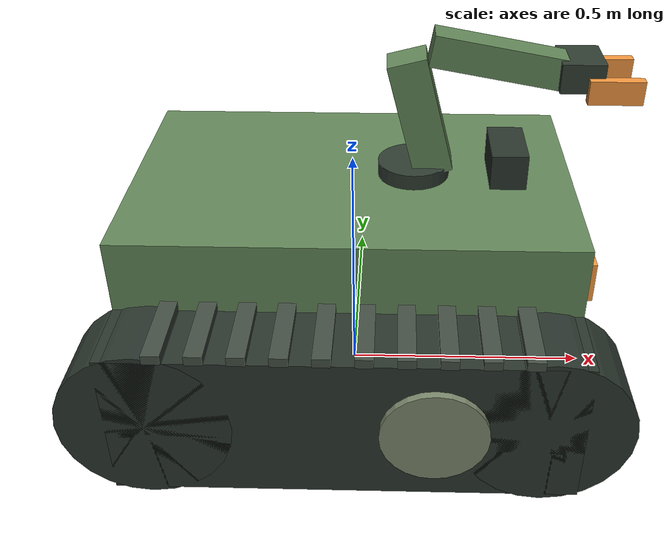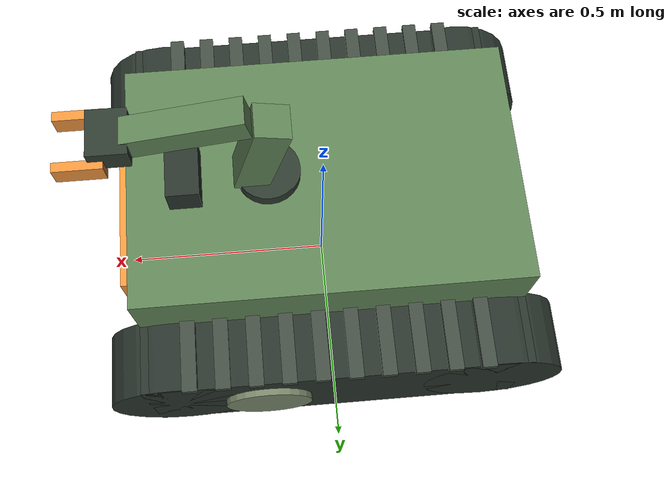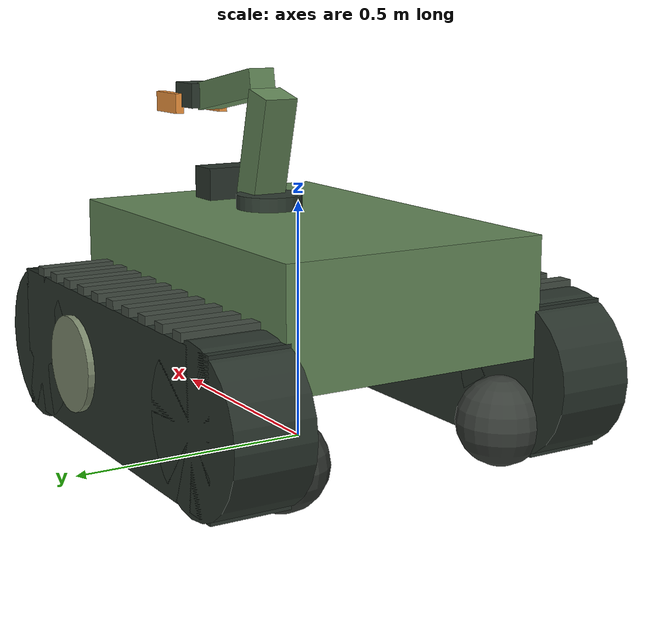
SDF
<?xml version='1.0' encoding='utf-8'?>
<sdf version="1.10">
  <model name="robot">
    <static>false</static>
    <link name="base_link">
      <inertial>
        <mass>52.6</mass>
        <pose>0 0 0.34 0 0 0</pose>
        <inertia>
          <ixx>1.6270933333333335</ixx>
          <iyy>3.494393333333333</iyy>
          <izz>4.616526666666666</izz>
        </inertia>
      </inertial>
      <collision name="body_collision">
        <pose>0 0 0.35 0 0 0</pose>
        <geometry>
          <box>
            <size>0.78 0.48 0.2</size>
          </box>
        </geometry>
        <surface>
          <friction>
            <ode>
              <mu>0.6</mu>
              <mu2>0.6</mu2>
            </ode>
          </friction>
        </surface>
      </collision>
      <visual name="body">
        <pose>0 0 0.35 0 0 0</pose>
        <geometry>
          <box>
            <size>0.86 0.56 0.24</size>
          </box>
        </geometry>
        <material>
          <diffuse>0.38 0.52 0.34 1</diffuse>
        </material>
      </visual>
      <visual name="front_marker">
        <pose>0.44 0 0.35 0 0 0</pose>
        <geometry>
          <box>
            <size>0.04 0.4032 0.08</size>
          </box>
        </geometry>
        <material>
          <diffuse>0.96 0.6 0.24 1</diffuse>
        </material>
      </visual>
      <visual name="camera">
        <pose>0.301 0 0.506 0 0 0</pose>
        <geometry>
          <box>
            <size>0.07 0.13 0.07</size>
          </box>
        </geometry>
        <material>
          <diffuse>0.16 0.2 0.17 1</diffuse>
        </material>
      </visual>
      <visual name="left_track_envelope">
        <pose>0 0.35 0.18 0 0 0</pose>
        <geometry>
          <box>
            <size>0.86 0.16 0.3</size>
          </box>
        </geometry>
        <material>
          <diffuse>0.16 0.2 0.17 1</diffuse>
        </material>
      </visual>
      <visual name="left_rear_idler_visual">
        <pose>-0.36 0.35 0.18 1.5707963267948966 0 0</pose>
        <geometry>
          <cylinder>
            <radius>0.16</radius>
            <length>0.16</length>
          </cylinder>
        </geometry>
        <material>
          <diffuse>0.16 0.2 0.17 1</diffuse>
        </material>
      </visual>
      <visual name="left_front_idler_visual">
        <pose>0.36 0.35 0.18 1.5707963267948966 0 0</pose>
        <geometry>
          <cylinder>
            <radius>0.16</radius>
            <length>0.16</length>
          </cylinder>
        </geometry>
        <material>
          <diffuse>0.16 0.2 0.17 1</diffuse>
        </material>
      </visual>
      <visual name="left_tread_0">
        <pose>-0.324 0.35 0.34199999999999997 0 0 0</pose>
        <geometry>
          <box>
            <size>0.032 0.1728 0.018</size>
          </box>
        </geometry>
        <material>
          <diffuse>0.26 0.3 0.26 1</diffuse>
        </material>
      </visual>
      <visual name="left_tread_1">
        <pose>-0.252 0.35 0.34199999999999997 0 0 0</pose>
        <geometry>
          <box>
            <size>0.032 0.1728 0.018</size>
          </box>
        </geometry>
        <material>
          <diffuse>0.26 0.3 0.26 1</diffuse>
        </material>
      </visual>
      <visual name="left_tread_2">
        <pose>-0.18 0.35 0.34199999999999997 0 0 0</pose>
        <geometry>
          <box>
            <size>0.032 0.1728 0.018</size>
          </box>
        </geometry>
        <material>
          <diffuse>0.26 0.3 0.26 1</diffuse>
        </material>
      </visual>
      <visual name="left_tread_3">
        <pose>-0.10799999999999998 0.35 0.34199999999999997 0 0 0</pose>
        <geometry>
          <box>
            <size>0.032 0.1728 0.018</size>
          </box>
        </geometry>
        <material>
          <diffuse>0.26 0.3 0.26 1</diffuse>
        </material>
      </visual>
      <visual name="left_tread_4">
        <pose>-0.03600000000000003 0.35 0.34199999999999997 0 0 0</pose>
        <geometry>
          <box>
            <size>0.032 0.1728 0.018</size>
          </box>
        </geometry>
        <material>
          <diffuse>0.26 0.3 0.26 1</diffuse>
        </material>
      </visual>
      <visual name="left_tread_5">
        <pose>0.03600000000000003 0.35 0.34199999999999997 0 0 0</pose>
        <geometry>
          <box>
            <size>0.032 0.1728 0.018</size>
          </box>
        </geometry>
        <material>
          <diffuse>0.26 0.3 0.26 1</diffuse>
        </material>
      </visual>
      <visual name="left_tread_6">
        <pose>0.10799999999999998 0.35 0.34199999999999997 0 0 0</pose>
        <geometry>
          <box>
            <size>0.032 0.1728 0.018</size>
          </box>
        </geometry>
        <material>
          <diffuse>0.26 0.3 0.26 1</diffuse>
        </material>
      </visual>
      <visual name="left_tread_7">
        <pose>0.17999999999999994 0.35 0.34199999999999997 0 0 0</pose>
        <geometry>
          <box>
            <size>0.032 0.1728 0.018</size>
          </box>
        </geometry>
        <material>
          <diffuse>0.26 0.3 0.26 1</diffuse>
        </material>
      </visual>
      <visual name="left_tread_8">
        <pose>0.252 0.35 0.34199999999999997 0 0 0</pose>
        <geometry>
          <box>
            <size>0.032 0.1728 0.018</size>
          </box>
        </geometry>
        <material>
          <diffuse>0.26 0.3 0.26 1</diffuse>
        </material>
      </visual>
      <visual name="left_tread_9">
        <pose>0.32399999999999995 0.35 0.34199999999999997 0 0 0</pose>
        <geometry>
          <box>
            <size>0.032 0.1728 0.018</size>
          </box>
        </geometry>
        <material>
          <diffuse>0.26 0.3 0.26 1</diffuse>
        </material>
      </visual>
      <visual name="right_track_envelope">
        <pose>0 -0.35 0.18 0 0 0</pose>
        <geometry>
          <box>
            <size>0.86 0.16 0.3</size>
          </box>
        </geometry>
        <material>
          <diffuse>0.16 0.2 0.17 1</diffuse>
        </material>
      </visual>
      <visual name="right_rear_idler_visual">
        <pose>-0.36 -0.35 0.18 1.5707963267948966 0 0</pose>
        <geometry>
          <cylinder>
            <radius>0.16</radius>
            <length>0.16</length>
          </cylinder>
        </geometry>
        <material>
          <diffuse>0.16 0.2 0.17 1</diffuse>
        </material>
      </visual>
      <visual name="right_front_idler_visual">
        <pose>0.36 -0.35 0.18 1.5707963267948966 0 0</pose>
        <geometry>
          <cylinder>
            <radius>0.16</radius>
            <length>0.16</length>
          </cylinder>
        </geometry>
        <material>
          <diffuse>0.16 0.2 0.17 1</diffuse>
        </material>
      </visual>
      <visual name="right_tread_0">
        <pose>-0.324 -0.35 0.34199999999999997 0 0 0</pose>
        <geometry>
          <box>
            <size>0.032 0.1728 0.018</size>
          </box>
        </geometry>
        <material>
          <diffuse>0.26 0.3 0.26 1</diffuse>
        </material>
      </visual>
      <visual name="right_tread_1">
        <pose>-0.252 -0.35 0.34199999999999997 0 0 0</pose>
        <geometry>
          <box>
            <size>0.032 0.1728 0.018</size>
          </box>
        </geometry>
        <material>
          <diffuse>0.26 0.3 0.26 1</diffuse>
        </material>
      </visual>
      <visual name="right_tread_2">
        <pose>-0.18 -0.35 0.34199999999999997 0 0 0</pose>
        <geometry>
          <box>
            <size>0.032 0.1728 0.018</size>
          </box>
        </geometry>
        <material>
          <diffuse>0.26 0.3 0.26 1</diffuse>
        </material>
      </visual>
      <visual name="right_tread_3">
        <pose>-0.10799999999999998 -0.35 0.34199999999999997 0 0 0</pose>
        <geometry>
          <box>
            <size>0.032 0.1728 0.018</size>
          </box>
        </geometry>
        <material>
          <diffuse>0.26 0.3 0.26 1</diffuse>
        </material>
      </visual>
      <visual name="right_tread_4">
        <pose>-0.03600000000000003 -0.35 0.34199999999999997 0 0 0</pose>
        <geometry>
          <box>
            <size>0.032 0.1728 0.018</size>
          </box>
        </geometry>
        <material>
          <diffuse>0.26 0.3 0.26 1</diffuse>
        </material>
      </visual>
      <visual name="right_tread_5">
        <pose>0.03600000000000003 -0.35 0.34199999999999997 0 0 0</pose>
        <geometry>
          <box>
            <size>0.032 0.1728 0.018</size>
          </box>
        </geometry>
        <material>
          <diffuse>0.26 0.3 0.26 1</diffuse>
        </material>
      </visual>
      <visual name="right_tread_6">
        <pose>0.10799999999999998 -0.35 0.34199999999999997 0 0 0</pose>
        <geometry>
          <box>
            <size>0.032 0.1728 0.018</size>
          </box>
        </geometry>
        <material>
          <diffuse>0.26 0.3 0.26 1</diffuse>
        </material>
      </visual>
      <visual name="right_tread_7">
        <pose>0.17999999999999994 -0.35 0.34199999999999997 0 0 0</pose>
        <geometry>
          <box>
            <size>0.032 0.1728 0.018</size>
          </box>
        </geometry>
        <material>
          <diffuse>0.26 0.3 0.26 1</diffuse>
        </material>
      </visual>
      <visual name="right_tread_8">
        <pose>0.252 -0.35 0.34199999999999997 0 0 0</pose>
        <geometry>
          <box>
            <size>0.032 0.1728 0.018</size>
          </box>
        </geometry>
        <material>
          <diffuse>0.26 0.3 0.26 1</diffuse>
        </material>
      </visual>
      <visual name="right_tread_9">
        <pose>0.32399999999999995 -0.35 0.34199999999999997 0 0 0</pose>
        <geometry>
          <box>
            <size>0.032 0.1728 0.018</size>
          </box>
        </geometry>
        <material>
          <diffuse>0.26 0.3 0.26 1</diffuse>
        </material>
      </visual>
      <visual name="arm_base_0">
        <pose>0.12 0 0.44999999999999996 0 0 0</pose>
        <geometry>
          <cylinder>
            <radius>0.07</radius>
            <length>0.1</length>
          </cylinder>
        </geometry>
        <material>
          <diffuse>0.18 0.23 0.19 1</diffuse>
        </material>
      </visual>
      <visual name="upper_arm_0">
        <pose>0.13 0 0.6 0 -0.25 0</pose>
        <geometry>
          <box>
            <size>0.075 0.075 0.23</size>
          </box>
        </geometry>
        <material>
          <diffuse>0.38 0.52 0.34 1</diffuse>
        </material>
      </visual>
      <visual name="forearm_0">
        <pose>0.27 0 0.71 0 0.18 0</pose>
        <geometry>
          <box>
            <size>0.25 0.06 0.06</size>
          </box>
        </geometry>
        <material>
          <diffuse>0.38 0.52 0.34 1</diffuse>
        </material>
      </visual>
      <visual name="wrist_0">
        <pose>0.42 0 0.69 0 0 0</pose>
        <geometry>
          <box>
            <size>0.08 0.1 0.055</size>
          </box>
        </geometry>
        <material>
          <diffuse>0.18 0.23 0.19 1</diffuse>
        </material>
      </visual>
      <visual name="jaw_0_-0.055">
        <pose>0.48 -0.055 0.6699999999999999 0 0 0</pose>
        <geometry>
          <box>
            <size>0.1 0.02 0.045</size>
          </box>
        </geometry>
        <material>
          <diffuse>0.94 0.58 0.24 1</diffuse>
        </material>
      </visual>
      <visual name="jaw_0_0.055">
        <pose>0.48 0.055 0.6699999999999999 0 0 0</pose>
        <geometry>
          <box>
            <size>0.1 0.02 0.045</size>
          </box>
        </geometry>
        <material>
          <diffuse>0.94 0.58 0.24 1</diffuse>
        </material>
      </visual>
      <sensor name="imu" type="imu">
        <always_on>true</always_on>
        <update_rate>50</update_rate>
        <topic>/garden/imu</topic>
        <imu />
      </sensor>
    </link>
    <link name="left_wheel">
      <pose>0.16 0.35 0.18 1.5707963267948966 0 0</pose>
      <inertial>
        <mass>6.0</mass>
        <inertia>
          <ixx>0.05705000000000001</ixx>
          <iyy>0.05705000000000001</iyy>
          <izz>0.09720000000000001</izz>
        </inertia>
      </inertial>
      <collision name="wheel_collision">
        <pose>0 0 0 0 0 0</pose>
        <geometry>
          <cylinder>
            <radius>0.18</radius>
            <length>0.13</length>
          </cylinder>
        </geometry>
        <surface>
          <friction>
            <ode>
              <mu>0.85</mu>
              <mu2>0.85</mu2>
            </ode>
          </friction>
        </surface>
      </collision>
      <visual name="hub">
        <pose>0 0 0 0 0 0</pose>
        <geometry>
          <cylinder>
            <radius>0.099</radius>
            <length>0.1885</length>
          </cylinder>
        </geometry>
        <material>
          <diffuse>0.48 0.53 0.42 1</diffuse>
        </material>
      </visual>
    </link>
    <joint name="left_joint" type="revolute">
      <parent>base_link</parent>
      <child>left_wheel</child>
      <axis>
        <xyz>0 0 -1</xyz>
        <limit>
          <effort>80.0</effort>
          <velocity>8.0</velocity>
        </limit>
      </axis>
    </joint>
    <link name="right_wheel">
      <pose>0.16 -0.35 0.18 1.5707963267948966 0 0</pose>
      <inertial>
        <mass>6.0</mass>
        <inertia>
          <ixx>0.05705000000000001</ixx>
          <iyy>0.05705000000000001</iyy>
          <izz>0.09720000000000001</izz>
        </inertia>
      </inertial>
      <collision name="wheel_collision">
        <pose>0 0 0 0 0 0</pose>
        <geometry>
          <cylinder>
            <radius>0.18</radius>
            <length>0.13</length>
          </cylinder>
        </geometry>
        <surface>
          <friction>
            <ode>
              <mu>0.85</mu>
              <mu2>0.85</mu2>
            </ode>
          </friction>
        </surface>
      </collision>
      <visual name="hub">
        <pose>0 0 0 0 0 0</pose>
        <geometry>
          <cylinder>
            <radius>0.099</radius>
            <length>0.1885</length>
          </cylinder>
        </geometry>
        <material>
          <diffuse>0.48 0.53 0.42 1</diffuse>
        </material>
      </visual>
    </link>
    <joint name="right_joint" type="revolute">
      <parent>base_link</parent>
      <child>right_wheel</child>
      <axis>
        <xyz>0 0 -1</xyz>
        <limit>
          <effort>80.0</effort>
          <velocity>8.0</velocity>
        </limit>
      </axis>
    </joint>
    <link name="support_0">
      <pose>-0.36 -0.25 0.09 0 0 0</pose>
      <inertial>
        <mass>0.2</mass>
        <inertia>
          <ixx>0.0006480000000000001</ixx>
          <iyy>0.0006480000000000001</iyy>
          <izz>0.0006480000000000001</izz>
        </inertia>
      </inertial>
      <collision name="contact_collision">
        <pose>0 0 0 0 0 0</pose>
        <geometry>
          <sphere>
            <radius>0.09</radius>
          </sphere>
        </geometry>
        <surface>
          <friction>
            <ode>
              <mu>0.03</mu>
              <mu2>0.03</mu2>
            </ode>
          </friction>
        </surface>
      </collision>
      <visual name="contact">
        <pose>0 0 0 0 0 0</pose>
        <geometry>
          <sphere>
            <radius>0.09</radius>
          </sphere>
        </geometry>
        <material>
          <diffuse>0.22 0.24 0.22 1</diffuse>
        </material>
      </visual>
    </link>
    <joint name="support_0_fixed" type="fixed">
      <parent>base_link</parent>
      <child>support_0</child>
    </joint>
    <link name="support_1">
      <pose>-0.36 0.25 0.09 0 0 0</pose>
      <inertial>
        <mass>0.2</mass>
        <inertia>
          <ixx>0.0006480000000000001</ixx>
          <iyy>0.0006480000000000001</iyy>
          <izz>0.0006480000000000001</izz>
        </inertia>
      </inertial>
      <collision name="contact_collision">
        <pose>0 0 0 0 0 0</pose>
        <geometry>
          <sphere>
            <radius>0.09</radius>
          </sphere>
        </geometry>
        <surface>
          <friction>
            <ode>
              <mu>0.03</mu>
              <mu2>0.03</mu2>
            </ode>
          </friction>
        </surface>
      </collision>
      <visual name="contact">
        <pose>0 0 0 0 0 0</pose>
        <geometry>
          <sphere>
            <radius>0.09</radius>
          </sphere>
        </geometry>
        <material>
          <diffuse>0.22 0.24 0.22 1</diffuse>
        </material>
      </visual>
    </link>
    <joint name="support_1_fixed" type="fixed">
      <parent>base_link</parent>
      <child>support_1</child>
    </joint>
    <plugin filename="gz-sim-diff-drive-system" name="gz::sim::systems::DiffDrive">
      <left_joint>left_joint</left_joint>
      <right_joint>right_joint</right_joint>
      <wheel_separation>0.7</wheel_separation>
      <wheel_radius>0.18</wheel_radius>
      <topic>/garden/cmd_vel</topic>
      <odom_topic>/garden/odom</odom_topic>
      <frame_id>odom</frame_id>
      <child_frame_id>base_link</child_frame_id>
      <odom_publish_frequency>30</odom_publish_frequency>
      <min_linear_velocity>-0.35</min_linear_velocity>
      <max_linear_velocity>0.35</max_linear_velocity>
      <min_angular_velocity>-0.9</min_angular_velocity>
      <max_angular_velocity>0.9</max_angular_velocity>
      <min_linear_acceleration>-0.6</min_linear_acceleration>
      <max_linear_acceleration>0.6</max_linear_acceleration>
      <min_angular_acceleration>-1.5</min_angular_acceleration>
      <max_angular_acceleration>1.5</max_angular_acceleration>
    </plugin>
    <plugin filename="gz-sim-joint-state-publisher-system" name="gz::sim::systems::JointStatePublisher">
      <topic>/garden/joint_states</topic>
      <joint_name>left_joint</joint_name>
      <joint_name>right_joint</joint_name>
      <update_rate>100</update_rate>
    </plugin>
    <plugin filename="gz-sim-pose-publisher-system" name="gz::sim::systems::PosePublisher">
      <publish_model_pose>true</publish_model_pose>
      <publish_link_pose>true</publish_link_pose>
      <publish_visual_pose>false</publish_visual_pose>
      <publish_collision_pose>false</publish_collision_pose>
      <publish_sensor_pose>false</publish_sensor_pose>
      <use_pose_vector_msg>true</use_pose_vector_msg>
      <update_frequency>20</update_frequency>
    </plugin>
  </model>
</sdf>
